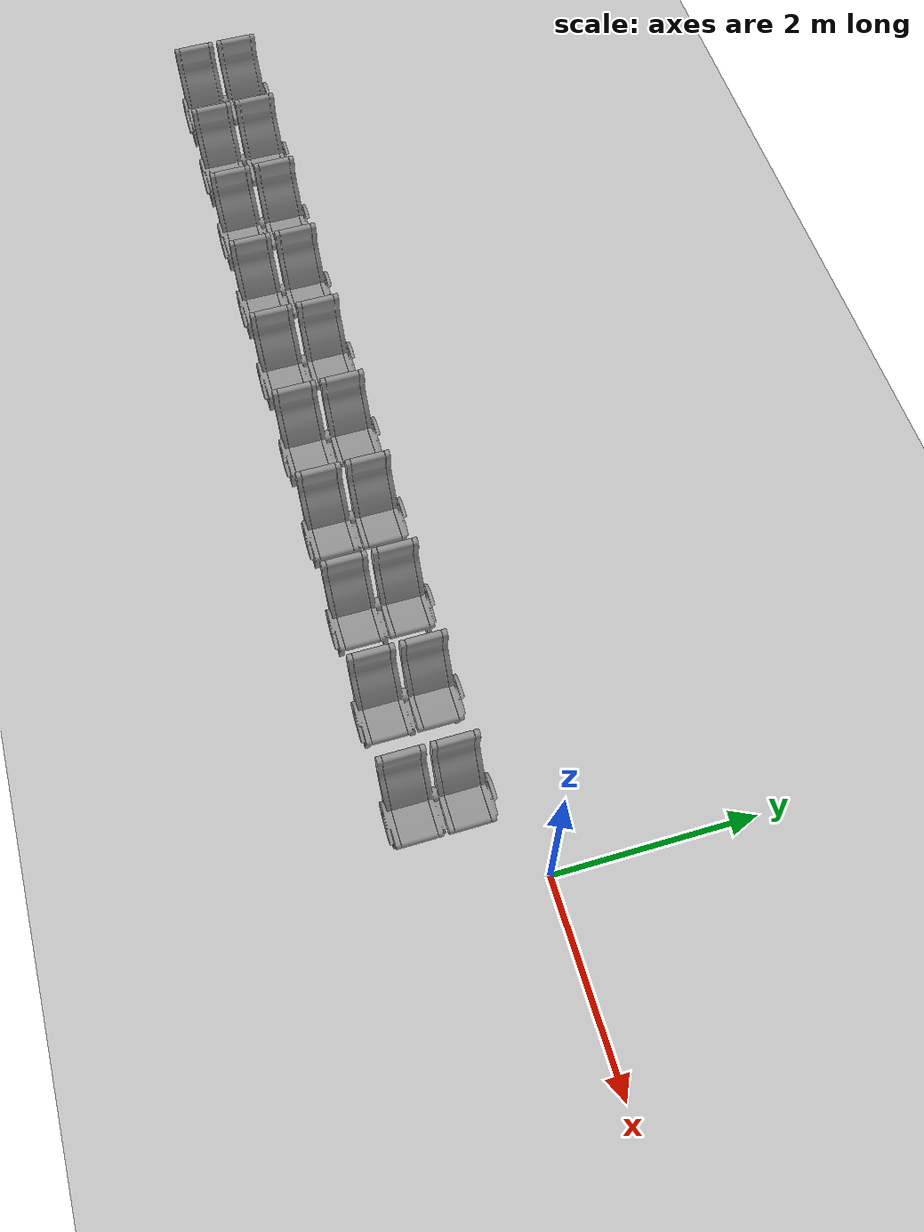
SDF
<sdf version="1.7">
 <world name="default">
  <model name="ground_plane">
   <static>1</static>
   <link name="link">
    <collision name="collision">
     <geometry><plane><normal>0 0 1</normal><size>100 100</size></plane></geometry>
     <surface><friction><ode><mu>100</mu><mu2>50</mu2></ode></friction></surface>
    </collision>
    <visual name="visual">
     <cast_shadows>0</cast_shadows>
     <geometry><plane><normal>0 0 1</normal><size>100 100</size></plane></geometry>
     <material>
      <script><uri>file://media/materials/scripts/gazebo.material</uri><name>Gazebo/Grey</name></script>
     </material>
    </visual>
   </link>
  </model>
  <model name="seat_10_0">
   <model name="seat">
    <link name="link_0">
     <inertial>
      <mass>1</mass>
      <inertia>
       <ixx>0.166667</ixx>
       <ixy>0</ixy>
       <ixz>0</ixz>
       <iyy>0.166667</iyy>
       <iyz>0</iyz>
       <izz>0.166667</izz>
      </inertia>
     </inertial>
     <visual name="visual">
      <pose>-0.3 -0.5 0 0 -0 0</pose>
      <geometry><mesh><uri>model://seat1/meshes/seat1.stl</uri><scale>0.001 0.001 0.001</scale></mesh></geometry>
      <material>
       <lighting>1</lighting>
       <script><uri>file://media/materials/scripts/gazebo.material</uri><name>Gazebo/Grey</name></script>
       <shader type="pixel"><normal_map>__default__</normal_map></shader>
       <ambient>0.3 0.3 0.3 1</ambient>
       <diffuse>0.7 0.7 0.7 1</diffuse>
       <specular>0.01 0.01 0.01 1</specular>
       <emissive>0 0 0 1</emissive>
      </material>
     </visual>
     <collision name="collision">
      <pose>-0.3 -0.5 0 0 -0 0</pose>
      <geometry><mesh><uri>model://seat1/meshes/seat1.stl</uri><scale>0.001 0.001 0.001</scale></mesh></geometry>
      <surface>
       <friction>
        <ode><mu>10000</mu><mu2>10000</mu2><fdir1>0 0 0</fdir1><slip1>0</slip1><slip2>0</slip2></ode>
        <torsional>
         <coefficient>1</coefficient>
         <patch_radius>0</patch_radius>
         <surface_radius>0</surface_radius>
         <use_patch_radius>1</use_patch_radius>
         <ode><slip>0</slip></ode>
        </torsional>
       </friction>
       <bounce><restitution_coefficient>0</restitution_coefficient><threshold>1e+06</threshold></bounce>
       <contact>
        <collide_without_contact>0</collide_without_contact>
        <collide_without_contact_bitmask>1</collide_without_contact_bitmask>
        <collide_bitmask>1</collide_bitmask>
        <ode>
         <soft_cfm>0</soft_cfm>
         <soft_erp>0.2</soft_erp>
         <kp>1e+13</kp>
         <kd>1</kd>
         <max_vel>0.01</max_vel>
         <min_depth>0</min_depth>
        </ode>
        <bullet>
         <split_impulse>1</split_impulse>
         <split_impulse_penetration_threshold>-0.01</split_impulse_penetration_threshold>
         <soft_cfm>0</soft_cfm>
         <soft_erp>0.2</soft_erp>
         <kp>1e+13</kp>
         <kd>1</kd>
        </bullet>
       </contact>
      </surface>
     </collision>
    </link>
    <static>0</static>
    <pose>-4.49906 0.001451 0 0 -0 0</pose>
   </model>
   <model name="seat_0">
    <link name="link_0">
     <inertial>
      <mass>1</mass>
      <inertia>
       <ixx>0.166667</ixx>
       <ixy>0</ixy>
       <ixz>0</ixz>
       <iyy>0.166667</iyy>
       <iyz>0</iyz>
       <izz>0.166667</izz>
      </inertia>
     </inertial>
     <visual name="visual">
      <pose>-0.3 -0.5 0 0 -0 0</pose>
      <geometry><mesh><uri>model://seat1/meshes/seat1.stl</uri><scale>0.001 0.001 0.001</scale></mesh></geometry>
      <material>
       <lighting>1</lighting>
       <script><uri>file://media/materials/scripts/gazebo.material</uri><name>Gazebo/Grey</name></script>
       <shader type="pixel"><normal_map>__default__</normal_map></shader>
       <ambient>0.3 0.3 0.3 1</ambient>
       <diffuse>0.7 0.7 0.7 1</diffuse>
       <specular>0.01 0.01 0.01 1</specular>
       <emissive>0 0 0 1</emissive>
      </material>
     </visual>
     <collision name="collision">
      <pose>-0.3 -0.5 0 0 -0 0</pose>
      <geometry><mesh><uri>model://seat1/meshes/seat1.stl</uri><scale>0.001 0.001 0.001</scale></mesh></geometry>
      <surface>
       <friction>
        <ode><mu>10000</mu><mu2>10000</mu2><fdir1>0 0 0</fdir1><slip1>0</slip1><slip2>0</slip2></ode>
        <torsional>
         <coefficient>1</coefficient>
         <patch_radius>0</patch_radius>
         <surface_radius>0</surface_radius>
         <use_patch_radius>1</use_patch_radius>
         <ode><slip>0</slip></ode>
        </torsional>
       </friction>
       <bounce><restitution_coefficient>0</restitution_coefficient><threshold>1e+06</threshold></bounce>
       <contact>
        <collide_without_contact>0</collide_without_contact>
        <collide_without_contact_bitmask>1</collide_without_contact_bitmask>
        <collide_bitmask>1</collide_bitmask>
        <ode>
         <soft_cfm>0</soft_cfm>
         <soft_erp>0.2</soft_erp>
         <kp>1e+13</kp>
         <kd>1</kd>
         <max_vel>0.01</max_vel>
         <min_depth>0</min_depth>
        </ode>
        <bullet>
         <split_impulse>1</split_impulse>
         <split_impulse_penetration_threshold>-0.01</split_impulse_penetration_threshold>
         <soft_cfm>0</soft_cfm>
         <soft_erp>0.2</soft_erp>
         <kp>1e+13</kp>
         <kd>1</kd>
        </bullet>
       </contact>
      </surface>
     </collision>
    </link>
    <static>0</static>
    <pose>-3.50213 0.000104 0 0 -0 0</pose>
   </model>
   <model name="seat_1">
    <link name="link_0">
     <inertial>
      <mass>1</mass>
      <inertia>
       <ixx>0.166667</ixx>
       <ixy>0</ixy>
       <ixz>0</ixz>
       <iyy>0.166667</iyy>
       <iyz>0</iyz>
       <izz>0.166667</izz>
      </inertia>
     </inertial>
     <visual name="visual">
      <pose>-0.3 -0.5 0 0 -0 0</pose>
      <geometry><mesh><uri>model://seat1/meshes/seat1.stl</uri><scale>0.001 0.001 0.001</scale></mesh></geometry>
      <material>
       <lighting>1</lighting>
       <script><uri>file://media/materials/scripts/gazebo.material</uri><name>Gazebo/Grey</name></script>
       <shader type="pixel"><normal_map>__default__</normal_map></shader>
       <ambient>0.3 0.3 0.3 1</ambient>
       <diffuse>0.7 0.7 0.7 1</diffuse>
       <specular>0.01 0.01 0.01 1</specular>
       <emissive>0 0 0 1</emissive>
      </material>
     </visual>
     <collision name="collision">
      <pose>-0.3 -0.5 0 0 -0 0</pose>
      <geometry><mesh><uri>model://seat1/meshes/seat1.stl</uri><scale>0.001 0.001 0.001</scale></mesh></geometry>
      <surface>
       <friction>
        <ode><mu>10000</mu><mu2>10000</mu2><fdir1>0 0 0</fdir1><slip1>0</slip1><slip2>0</slip2></ode>
        <torsional>
         <coefficient>1</coefficient>
         <patch_radius>0</patch_radius>
         <surface_radius>0</surface_radius>
         <use_patch_radius>1</use_patch_radius>
         <ode><slip>0</slip></ode>
        </torsional>
       </friction>
       <bounce><restitution_coefficient>0</restitution_coefficient><threshold>1e+06</threshold></bounce>
       <contact>
        <collide_without_contact>0</collide_without_contact>
        <collide_without_contact_bitmask>1</collide_without_contact_bitmask>
        <collide_bitmask>1</collide_bitmask>
        <ode>
         <soft_cfm>0</soft_cfm>
         <soft_erp>0.2</soft_erp>
         <kp>1e+13</kp>
         <kd>1</kd>
         <max_vel>0.01</max_vel>
         <min_depth>0</min_depth>
        </ode>
        <bullet>
         <split_impulse>1</split_impulse>
         <split_impulse_penetration_threshold>-0.01</split_impulse_penetration_threshold>
         <soft_cfm>0</soft_cfm>
         <soft_erp>0.2</soft_erp>
         <kp>1e+13</kp>
         <kd>1</kd>
        </bullet>
       </contact>
      </surface>
     </collision>
    </link>
    <static>0</static>
    <pose>-2.50166 -0.002281 0 0 -0 0</pose>
   </model>
   <model name="seat_2">
    <link name="link_0">
     <inertial>
      <mass>1</mass>
      <inertia>
       <ixx>0.166667</ixx>
       <ixy>0</ixy>
       <ixz>0</ixz>
       <iyy>0.166667</iyy>
       <iyz>0</iyz>
       <izz>0.166667</izz>
      </inertia>
     </inertial>
     <visual name="visual">
      <pose>-0.3 -0.5 0 0 -0 0</pose>
      <geometry><mesh><uri>model://seat1/meshes/seat1.stl</uri><scale>0.001 0.001 0.001</scale></mesh></geometry>
      <material>
       <lighting>1</lighting>
       <script><uri>file://media/materials/scripts/gazebo.material</uri><name>Gazebo/Grey</name></script>
       <shader type="pixel"><normal_map>__default__</normal_map></shader>
       <ambient>0.3 0.3 0.3 1</ambient>
       <diffuse>0.7 0.7 0.7 1</diffuse>
       <specular>0.01 0.01 0.01 1</specular>
       <emissive>0 0 0 1</emissive>
      </material>
     </visual>
     <collision name="collision">
      <pose>-0.3 -0.5 0 0 -0 0</pose>
      <geometry><mesh><uri>model://seat1/meshes/seat1.stl</uri><scale>0.001 0.001 0.001</scale></mesh></geometry>
      <surface>
       <friction>
        <ode><mu>10000</mu><mu2>10000</mu2><fdir1>0 0 0</fdir1><slip1>0</slip1><slip2>0</slip2></ode>
        <torsional>
         <coefficient>1</coefficient>
         <patch_radius>0</patch_radius>
         <surface_radius>0</surface_radius>
         <use_patch_radius>1</use_patch_radius>
         <ode><slip>0</slip></ode>
        </torsional>
       </friction>
       <bounce><restitution_coefficient>0</restitution_coefficient><threshold>1e+06</threshold></bounce>
       <contact>
        <collide_without_contact>0</collide_without_contact>
        <collide_without_contact_bitmask>1</collide_without_contact_bitmask>
        <collide_bitmask>1</collide_bitmask>
        <ode>
         <soft_cfm>0</soft_cfm>
         <soft_erp>0.2</soft_erp>
         <kp>1e+13</kp>
         <kd>1</kd>
         <max_vel>0.01</max_vel>
         <min_depth>0</min_depth>
        </ode>
        <bullet>
         <split_impulse>1</split_impulse>
         <split_impulse_penetration_threshold>-0.01</split_impulse_penetration_threshold>
         <soft_cfm>0</soft_cfm>
         <soft_erp>0.2</soft_erp>
         <kp>1e+13</kp>
         <kd>1</kd>
        </bullet>
       </contact>
      </surface>
     </collision>
    </link>
    <static>0</static>
    <pose>-1.49886 -0.001439 0 0 -0 0</pose>
   </model>
   <model name="seat_3">
    <link name="link_0">
     <inertial>
      <mass>1</mass>
      <inertia>
       <ixx>0.166667</ixx>
       <ixy>0</ixy>
       <ixz>0</ixz>
       <iyy>0.166667</iyy>
       <iyz>0</iyz>
       <izz>0.166667</izz>
      </inertia>
     </inertial>
     <visual name="visual">
      <pose>-0.3 -0.5 0 0 -0 0</pose>
      <geometry><mesh><uri>model://seat1/meshes/seat1.stl</uri><scale>0.001 0.001 0.001</scale></mesh></geometry>
      <material>
       <lighting>1</lighting>
       <script><uri>file://media/materials/scripts/gazebo.material</uri><name>Gazebo/Grey</name></script>
       <shader type="pixel"><normal_map>__default__</normal_map></shader>
       <ambient>0.3 0.3 0.3 1</ambient>
       <diffuse>0.7 0.7 0.7 1</diffuse>
       <specular>0.01 0.01 0.01 1</specular>
       <emissive>0 0 0 1</emissive>
      </material>
     </visual>
     <collision name="collision">
      <pose>-0.3 -0.5 0 0 -0 0</pose>
      <geometry><mesh><uri>model://seat1/meshes/seat1.stl</uri><scale>0.001 0.001 0.001</scale></mesh></geometry>
      <surface>
       <friction>
        <ode><mu>10000</mu><mu2>10000</mu2><fdir1>0 0 0</fdir1><slip1>0</slip1><slip2>0</slip2></ode>
        <torsional>
         <coefficient>1</coefficient>
         <patch_radius>0</patch_radius>
         <surface_radius>0</surface_radius>
         <use_patch_radius>1</use_patch_radius>
         <ode><slip>0</slip></ode>
        </torsional>
       </friction>
       <bounce><restitution_coefficient>0</restitution_coefficient><threshold>1e+06</threshold></bounce>
       <contact>
        <collide_without_contact>0</collide_without_contact>
        <collide_without_contact_bitmask>1</collide_without_contact_bitmask>
        <collide_bitmask>1</collide_bitmask>
        <ode>
         <soft_cfm>0</soft_cfm>
         <soft_erp>0.2</soft_erp>
         <kp>1e+13</kp>
         <kd>1</kd>
         <max_vel>0.01</max_vel>
         <min_depth>0</min_depth>
        </ode>
        <bullet>
         <split_impulse>1</split_impulse>
         <split_impulse_penetration_threshold>-0.01</split_impulse_penetration_threshold>
         <soft_cfm>0</soft_cfm>
         <soft_erp>0.2</soft_erp>
         <kp>1e+13</kp>
         <kd>1</kd>
        </bullet>
       </contact>
      </surface>
     </collision>
    </link>
    <static>0</static>
    <pose>-0.502503 -0.001106 0 0 -0 0</pose>
   </model>
   <model name="seat_4">
    <link name="link_0">
     <inertial>
      <mass>1</mass>
      <inertia>
       <ixx>0.166667</ixx>
       <ixy>0</ixy>
       <ixz>0</ixz>
       <iyy>0.166667</iyy>
       <iyz>0</iyz>
       <izz>0.166667</izz>
      </inertia>
     </inertial>
     <visual name="visual">
      <pose>-0.3 -0.5 0 0 -0 0</pose>
      <geometry><mesh><uri>model://seat1/meshes/seat1.stl</uri><scale>0.001 0.001 0.001</scale></mesh></geometry>
      <material>
       <lighting>1</lighting>
       <script><uri>file://media/materials/scripts/gazebo.material</uri><name>Gazebo/Grey</name></script>
       <shader type="pixel"><normal_map>__default__</normal_map></shader>
       <ambient>0.3 0.3 0.3 1</ambient>
       <diffuse>0.7 0.7 0.7 1</diffuse>
       <specular>0.01 0.01 0.01 1</specular>
       <emissive>0 0 0 1</emissive>
      </material>
     </visual>
     <collision name="collision">
      <pose>-0.3 -0.5 0 0 -0 0</pose>
      <geometry><mesh><uri>model://seat1/meshes/seat1.stl</uri><scale>0.001 0.001 0.001</scale></mesh></geometry>
      <surface>
       <friction>
        <ode><mu>10000</mu><mu2>10000</mu2><fdir1>0 0 0</fdir1><slip1>0</slip1><slip2>0</slip2></ode>
        <torsional>
         <coefficient>1</coefficient>
         <patch_radius>0</patch_radius>
         <surface_radius>0</surface_radius>
         <use_patch_radius>1</use_patch_radius>
         <ode><slip>0</slip></ode>
        </torsional>
       </friction>
       <bounce><restitution_coefficient>0</restitution_coefficient><threshold>1e+06</threshold></bounce>
       <contact>
        <collide_without_contact>0</collide_without_contact>
        <collide_without_contact_bitmask>1</collide_without_contact_bitmask>
        <collide_bitmask>1</collide_bitmask>
        <ode>
         <soft_cfm>0</soft_cfm>
         <soft_erp>0.2</soft_erp>
         <kp>1e+13</kp>
         <kd>1</kd>
         <max_vel>0.01</max_vel>
         <min_depth>0</min_depth>
        </ode>
        <bullet>
         <split_impulse>1</split_impulse>
         <split_impulse_penetration_threshold>-0.01</split_impulse_penetration_threshold>
         <soft_cfm>0</soft_cfm>
         <soft_erp>0.2</soft_erp>
         <kp>1e+13</kp>
         <kd>1</kd>
        </bullet>
       </contact>
      </surface>
     </collision>
    </link>
    <static>0</static>
    <pose>0.499248 0.004347 0 0 -0 0</pose>
   </model>
   <model name="seat_5">
    <link name="link_0">
     <inertial>
      <mass>1</mass>
      <inertia>
       <ixx>0.166667</ixx>
       <ixy>0</ixy>
       <ixz>0</ixz>
       <iyy>0.166667</iyy>
       <iyz>0</iyz>
       <izz>0.166667</izz>
      </inertia>
     </inertial>
     <visual name="visual">
      <pose>-0.3 -0.5 0 0 -0 0</pose>
      <geometry><mesh><uri>model://seat1/meshes/seat1.stl</uri><scale>0.001 0.001 0.001</scale></mesh></geometry>
      <material>
       <lighting>1</lighting>
       <script><uri>file://media/materials/scripts/gazebo.material</uri><name>Gazebo/Grey</name></script>
       <shader type="pixel"><normal_map>__default__</normal_map></shader>
       <ambient>0.3 0.3 0.3 1</ambient>
       <diffuse>0.7 0.7 0.7 1</diffuse>
       <specular>0.01 0.01 0.01 1</specular>
       <emissive>0 0 0 1</emissive>
      </material>
     </visual>
     <collision name="collision">
      <pose>-0.3 -0.5 0 0 -0 0</pose>
      <geometry><mesh><uri>model://seat1/meshes/seat1.stl</uri><scale>0.001 0.001 0.001</scale></mesh></geometry>
      <surface>
       <friction>
        <ode><mu>10000</mu><mu2>10000</mu2><fdir1>0 0 0</fdir1><slip1>0</slip1><slip2>0</slip2></ode>
        <torsional>
         <coefficient>1</coefficient>
         <patch_radius>0</patch_radius>
         <surface_radius>0</surface_radius>
         <use_patch_radius>1</use_patch_radius>
         <ode><slip>0</slip></ode>
        </torsional>
       </friction>
       <bounce><restitution_coefficient>0</restitution_coefficient><threshold>1e+06</threshold></bounce>
       <contact>
        <collide_without_contact>0</collide_without_contact>
        <collide_without_contact_bitmask>1</collide_without_contact_bitmask>
        <collide_bitmask>1</collide_bitmask>
        <ode>
         <soft_cfm>0</soft_cfm>
         <soft_erp>0.2</soft_erp>
         <kp>1e+13</kp>
         <kd>1</kd>
         <max_vel>0.01</max_vel>
         <min_depth>0</min_depth>
        </ode>
        <bullet>
         <split_impulse>1</split_impulse>
         <split_impulse_penetration_threshold>-0.01</split_impulse_penetration_threshold>
         <soft_cfm>0</soft_cfm>
         <soft_erp>0.2</soft_erp>
         <kp>1e+13</kp>
         <kd>1</kd>
        </bullet>
       </contact>
      </surface>
     </collision>
    </link>
    <static>0</static>
    <pose>1.49969 0.0043 0 0 -0 0</pose>
   </model>
   <model name="seat_6">
    <link name="link_0">
     <inertial>
      <mass>1</mass>
      <inertia>
       <ixx>0.166667</ixx>
       <ixy>0</ixy>
       <ixz>0</ixz>
       <iyy>0.166667</iyy>
       <iyz>0</iyz>
       <izz>0.166667</izz>
      </inertia>
     </inertial>
     <visual name="visual">
      <pose>-0.3 -0.5 0 0 -0 0</pose>
      <geometry><mesh><uri>model://seat1/meshes/seat1.stl</uri><scale>0.001 0.001 0.001</scale></mesh></geometry>
      <material>
       <lighting>1</lighting>
       <script><uri>file://media/materials/scripts/gazebo.material</uri><name>Gazebo/Grey</name></script>
       <shader type="pixel"><normal_map>__default__</normal_map></shader>
       <ambient>0.3 0.3 0.3 1</ambient>
       <diffuse>0.7 0.7 0.7 1</diffuse>
       <specular>0.01 0.01 0.01 1</specular>
       <emissive>0 0 0 1</emissive>
      </material>
     </visual>
     <collision name="collision">
      <pose>-0.3 -0.5 0 0 -0 0</pose>
      <geometry><mesh><uri>model://seat1/meshes/seat1.stl</uri><scale>0.001 0.001 0.001</scale></mesh></geometry>
      <surface>
       <friction>
        <ode><mu>10000</mu><mu2>10000</mu2><fdir1>0 0 0</fdir1><slip1>0</slip1><slip2>0</slip2></ode>
        <torsional>
         <coefficient>1</coefficient>
         <patch_radius>0</patch_radius>
         <surface_radius>0</surface_radius>
         <use_patch_radius>1</use_patch_radius>
         <ode><slip>0</slip></ode>
        </torsional>
       </friction>
       <bounce><restitution_coefficient>0</restitution_coefficient><threshold>1e+06</threshold></bounce>
       <contact>
        <collide_without_contact>0</collide_without_contact>
        <collide_without_contact_bitmask>1</collide_without_contact_bitmask>
        <collide_bitmask>1</collide_bitmask>
        <ode>
         <soft_cfm>0</soft_cfm>
         <soft_erp>0.2</soft_erp>
         <kp>1e+13</kp>
         <kd>1</kd>
         <max_vel>0.01</max_vel>
         <min_depth>0</min_depth>
        </ode>
        <bullet>
         <split_impulse>1</split_impulse>
         <split_impulse_penetration_threshold>-0.01</split_impulse_penetration_threshold>
         <soft_cfm>0</soft_cfm>
         <soft_erp>0.2</soft_erp>
         <kp>1e+13</kp>
         <kd>1</kd>
        </bullet>
       </contact>
      </surface>
     </collision>
    </link>
    <static>0</static>
    <pose>2.50992 -0.000349 0 0 -0 0</pose>
   </model>
   <model name="seat_7">
    <link name="link_0">
     <inertial>
      <mass>1</mass>
      <inertia>
       <ixx>0.166667</ixx>
       <ixy>0</ixy>
       <ixz>0</ixz>
       <iyy>0.166667</iyy>
       <iyz>0</iyz>
       <izz>0.166667</izz>
      </inertia>
     </inertial>
     <visual name="visual">
      <pose>-0.3 -0.5 0 0 -0 0</pose>
      <geometry><mesh><uri>model://seat1/meshes/seat1.stl</uri><scale>0.001 0.001 0.001</scale></mesh></geometry>
      <material>
       <lighting>1</lighting>
       <script><uri>file://media/materials/scripts/gazebo.material</uri><name>Gazebo/Grey</name></script>
       <shader type="pixel"><normal_map>__default__</normal_map></shader>
       <ambient>0.3 0.3 0.3 1</ambient>
       <diffuse>0.7 0.7 0.7 1</diffuse>
       <specular>0.01 0.01 0.01 1</specular>
       <emissive>0 0 0 1</emissive>
      </material>
     </visual>
     <collision name="collision">
      <pose>-0.3 -0.5 0 0 -0 0</pose>
      <geometry><mesh><uri>model://seat1/meshes/seat1.stl</uri><scale>0.001 0.001 0.001</scale></mesh></geometry>
      <surface>
       <friction>
        <ode><mu>10000</mu><mu2>10000</mu2><fdir1>0 0 0</fdir1><slip1>0</slip1><slip2>0</slip2></ode>
        <torsional>
         <coefficient>1</coefficient>
         <patch_radius>0</patch_radius>
         <surface_radius>0</surface_radius>
         <use_patch_radius>1</use_patch_radius>
         <ode><slip>0</slip></ode>
        </torsional>
       </friction>
       <bounce><restitution_coefficient>0</restitution_coefficient><threshold>1e+06</threshold></bounce>
       <contact>
        <collide_without_contact>0</collide_without_contact>
        <collide_without_contact_bitmask>1</collide_without_contact_bitmask>
        <collide_bitmask>1</collide_bitmask>
        <ode>
         <soft_cfm>0</soft_cfm>
         <soft_erp>0.2</soft_erp>
         <kp>1e+13</kp>
         <kd>1</kd>
         <max_vel>0.01</max_vel>
         <min_depth>0</min_depth>
        </ode>
        <bullet>
         <split_impulse>1</split_impulse>
         <split_impulse_penetration_threshold>-0.01</split_impulse_penetration_threshold>
         <soft_cfm>0</soft_cfm>
         <soft_erp>0.2</soft_erp>
         <kp>1e+13</kp>
         <kd>1</kd>
        </bullet>
       </contact>
      </surface>
     </collision>
    </link>
    <static>0</static>
    <pose>3.49546 -0.002775 0 0 -0 0</pose>
   </model>
   <model name="seat_8">
    <link name="link_0">
     <inertial>
      <mass>1</mass>
      <inertia>
       <ixx>0.166667</ixx>
       <ixy>0</ixy>
       <ixz>0</ixz>
       <iyy>0.166667</iyy>
       <iyz>0</iyz>
       <izz>0.166667</izz>
      </inertia>
     </inertial>
     <visual name="visual">
      <pose>-0.3 -0.5 0 0 -0 0</pose>
      <geometry><mesh><uri>model://seat1/meshes/seat1.stl</uri><scale>0.001 0.001 0.001</scale></mesh></geometry>
      <material>
       <lighting>1</lighting>
       <script><uri>file://media/materials/scripts/gazebo.material</uri><name>Gazebo/Grey</name></script>
       <shader type="pixel"><normal_map>__default__</normal_map></shader>
       <ambient>0.3 0.3 0.3 1</ambient>
       <diffuse>0.7 0.7 0.7 1</diffuse>
       <specular>0.01 0.01 0.01 1</specular>
       <emissive>0 0 0 1</emissive>
      </material>
     </visual>
     <collision name="collision">
      <pose>-0.3 -0.5 0 0 -0 0</pose>
      <geometry><mesh><uri>model://seat1/meshes/seat1.stl</uri><scale>0.001 0.001 0.001</scale></mesh></geometry>
      <surface>
       <friction>
        <ode><mu>10000</mu><mu2>10000</mu2><fdir1>0 0 0</fdir1><slip1>0</slip1><slip2>0</slip2></ode>
        <torsional>
         <coefficient>1</coefficient>
         <patch_radius>0</patch_radius>
         <surface_radius>0</surface_radius>
         <use_patch_radius>1</use_patch_radius>
         <ode><slip>0</slip></ode>
        </torsional>
       </friction>
       <bounce><restitution_coefficient>0</restitution_coefficient><threshold>1e+06</threshold></bounce>
       <contact>
        <collide_without_contact>0</collide_without_contact>
        <collide_without_contact_bitmask>1</collide_without_contact_bitmask>
        <collide_bitmask>1</collide_bitmask>
        <ode>
         <soft_cfm>0</soft_cfm>
         <soft_erp>0.2</soft_erp>
         <kp>1e+13</kp>
         <kd>1</kd>
         <max_vel>0.01</max_vel>
         <min_depth>0</min_depth>
        </ode>
        <bullet>
         <split_impulse>1</split_impulse>
         <split_impulse_penetration_threshold>-0.01</split_impulse_penetration_threshold>
         <soft_cfm>0</soft_cfm>
         <soft_erp>0.2</soft_erp>
         <kp>1e+13</kp>
         <kd>1</kd>
        </bullet>
       </contact>
      </surface>
     </collision>
    </link>
    <static>0</static>
    <pose>4.4999 -0.002251 0 0 -0 0</pose>
   </model>
   <static>0</static>
   <pose>-5.3474 -0.823963 0.000112 1e-05 -7e-06 0</pose>
  </model>
 </world>
</sdf>
